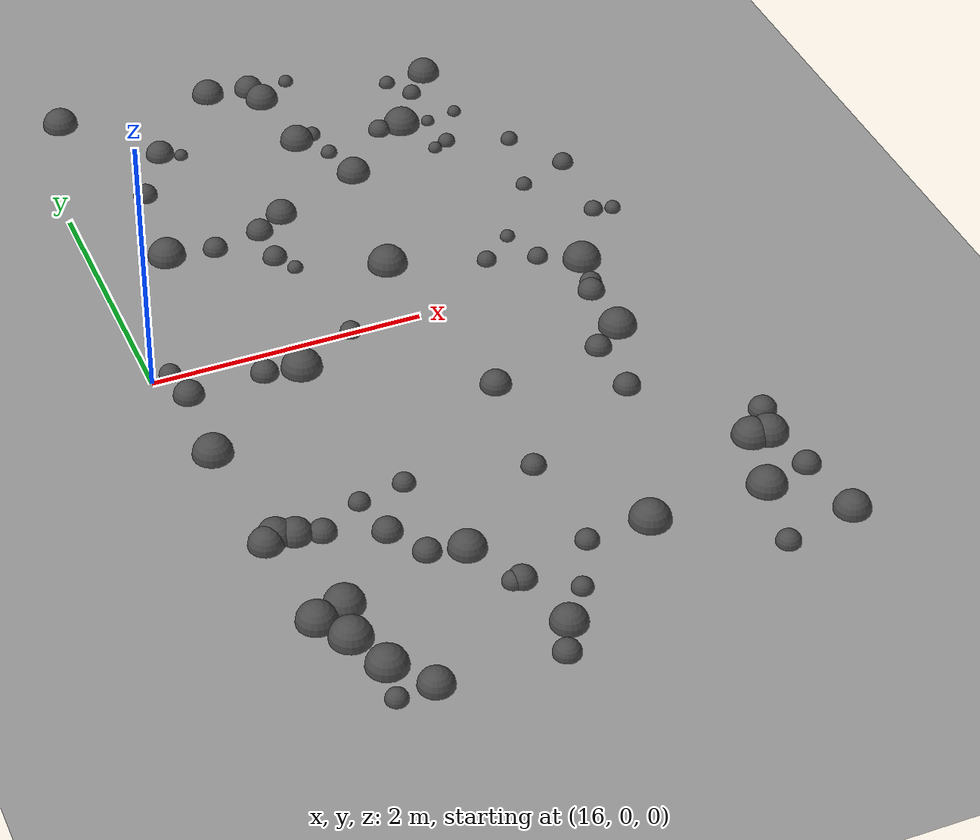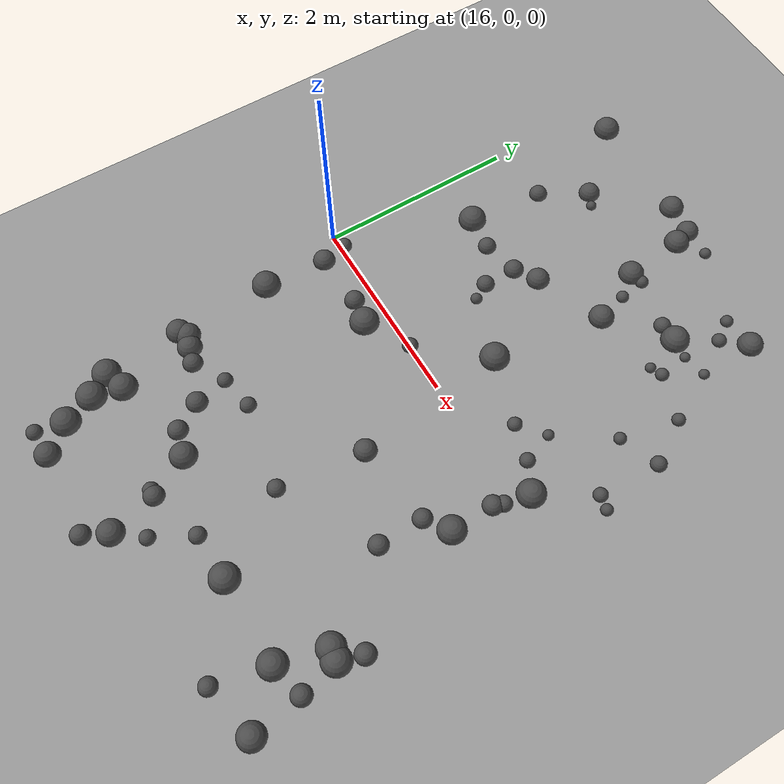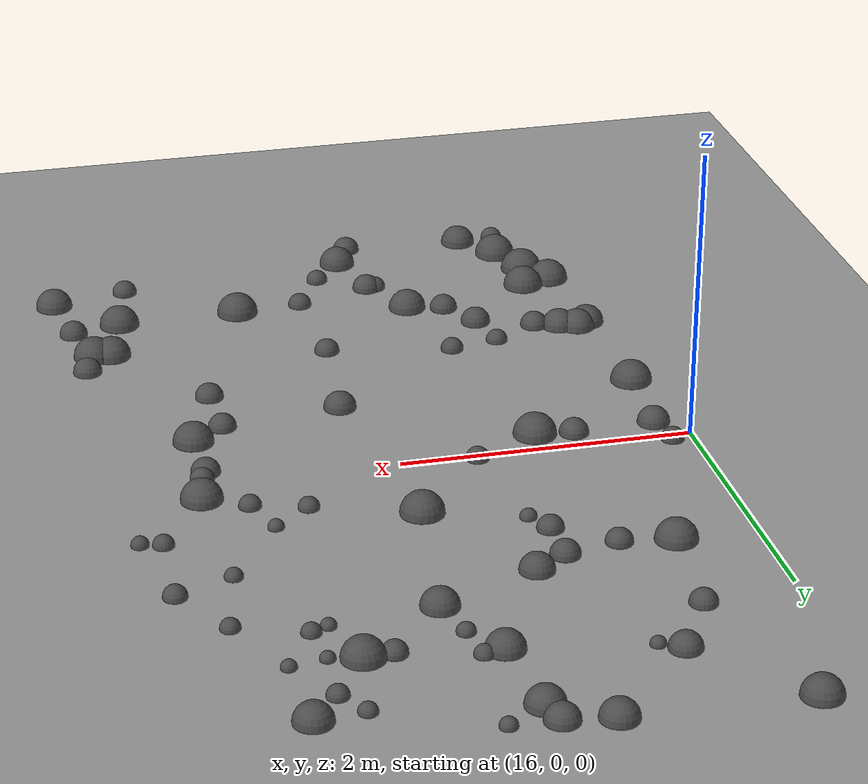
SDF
<sdf version="1.8">
 <world name="bumpy_world">
  <model name="ground_plane">
   <static>true</static>
   <link name="link">
    <collision name="collision">
     <geometry><plane><normal>0 0 1</normal><size>100 100</size></plane></geometry>
    </collision>
    <visual name="visual">
     <geometry><plane><normal>0 0 1</normal><size>100 100</size></plane></geometry>
     <material><ambient>0.6 0.6 0.6 1</ambient><diffuse>0.6 0.6 0.6 1</diffuse></material>
    </visual>
   </link>
  </model>
  <model name="bump_0">
   <static>true</static>
   <pose>16.894865641557914 -1.687665647435892 0.0 0 0 0</pose>
   <link name="link">
    <collision name="collision">
     <geometry><sphere><radius>0.0770126661770068</radius></sphere></geometry>
    </collision>
    <visual name="visual">
     <geometry><sphere><radius>0.0770126661770068</radius></sphere></geometry>
     <material><ambient>0.3 0.3 0.3 1</ambient><diffuse>0.3 0.3 0.3 1</diffuse></material>
    </visual>
   </link>
  </model>
  <model name="bump_1">
   <static>true</static>
   <pose>19.27033278510874 -0.6340820807959195 0.0 0 0 0</pose>
   <link name="link">
    <collision name="collision">
     <geometry><sphere><radius>0.13963033782455692</radius></sphere></geometry>
    </collision>
    <visual name="visual">
     <geometry><sphere><radius>0.13963033782455692</radius></sphere></geometry>
     <material><ambient>0.3 0.3 0.3 1</ambient><diffuse>0.3 0.3 0.3 1</diffuse></material>
    </visual>
   </link>
  </model>
  <model name="bump_11">
   <static>true</static>
   <pose>16.890118707463742 2.575693147293796 0.0 0 0 0</pose>
   <link name="link">
    <collision name="collision">
     <geometry><sphere><radius>0.10845833714806556</radius></sphere></geometry>
    </collision>
    <visual name="visual">
     <geometry><sphere><radius>0.10845833714806556</radius></sphere></geometry>
     <material><ambient>0.3 0.3 0.3 1</ambient><diffuse>0.3 0.3 0.3 1</diffuse></material>
    </visual>
   </link>
  </model>
  <model name="bump_13">
   <static>true</static>
   <pose>19.82699388906483 0.6549343927548907 0.0 0 0 0</pose>
   <link name="link">
    <collision name="collision">
     <geometry><sphere><radius>0.06008451406142055</radius></sphere></geometry>
    </collision>
    <visual name="visual">
     <geometry><sphere><radius>0.06008451406142055</radius></sphere></geometry>
     <material><ambient>0.3 0.3 0.3 1</ambient><diffuse>0.3 0.3 0.3 1</diffuse></material>
    </visual>
   </link>
  </model>
  <model name="bump_16">
   <static>true</static>
   <pose>18.119850170187316 3.139718380762189 0.0 0 0 0</pose>
   <link name="link">
    <collision name="collision">
     <geometry><sphere><radius>0.058183244620871155</radius></sphere></geometry>
    </collision>
    <visual name="visual">
     <geometry><sphere><radius>0.058183244620871155</radius></sphere></geometry>
     <material><ambient>0.3 0.3 0.3 1</ambient><diffuse>0.3 0.3 0.3 1</diffuse></material>
    </visual>
   </link>
  </model>
  <model name="bump_18">
   <static>true</static>
   <pose>19.264185863259478 -0.19718404351232843 0.0 0 0 0</pose>
   <link name="link">
    <collision name="collision">
     <geometry><sphere><radius>0.0996434231531243</radius></sphere></geometry>
    </collision>
    <visual name="visual">
     <geometry><sphere><radius>0.0996434231531243</radius></sphere></geometry>
     <material><ambient>0.3 0.3 0.3 1</ambient><diffuse>0.3 0.3 0.3 1</diffuse></material>
    </visual>
   </link>
  </model>
  <model name="bump_23">
   <static>true</static>
   <pose>18.211335934619928 -0.9073174179545531 0.0 0 0 0</pose>
   <link name="link">
    <collision name="collision">
     <geometry><sphere><radius>0.11321881905822662</radius></sphere></geometry>
    </collision>
    <visual name="visual">
     <geometry><sphere><radius>0.11321881905822662</radius></sphere></geometry>
     <material><ambient>0.3 0.3 0.3 1</ambient><diffuse>0.3 0.3 0.3 1</diffuse></material>
    </visual>
   </link>
  </model>
  <model name="bump_24">
   <static>true</static>
   <pose>16.541970305903412 1.3417336470706704 0.0 0 0 0</pose>
   <link name="link">
    <collision name="collision">
     <geometry><sphere><radius>0.1414803609292413</radius></sphere></geometry>
    </collision>
    <visual name="visual">
     <geometry><sphere><radius>0.1414803609292413</radius></sphere></geometry>
     <material><ambient>0.3 0.3 0.3 1</ambient><diffuse>0.3 0.3 0.3 1</diffuse></material>
    </visual>
   </link>
  </model>
  <model name="bump_28">
   <static>true</static>
   <pose>17.547857727442413 -2.7611181875364377 0.0 0 0 0</pose>
   <link name="link">
    <collision name="collision">
     <geometry><sphere><radius>0.0792202904193309</radius></sphere></geometry>
    </collision>
    <visual name="visual">
     <geometry><sphere><radius>0.0792202904193309</radius></sphere></geometry>
     <material><ambient>0.3 0.3 0.3 1</ambient><diffuse>0.3 0.3 0.3 1</diffuse></material>
    </visual>
   </link>
  </model>
  <model name="bump_34">
   <static>true</static>
   <pose>16.46842138627019 -3.4483761148656233 0.0 0 0 0</pose>
   <link name="link">
    <collision name="collision">
     <geometry><sphere><radius>0.07907619362396492</radius></sphere></geometry>
    </collision>
    <visual name="visual">
     <geometry><sphere><radius>0.07907619362396492</radius></sphere></geometry>
     <material><ambient>0.3 0.3 0.3 1</ambient><diffuse>0.3 0.3 0.3 1</diffuse></material>
    </visual>
   </link>
  </model>
  <model name="bump_39">
   <static>true</static>
   <pose>17.48793965364269 3.1971293868052486 0.0 0 0 0</pose>
   <link name="link">
    <collision name="collision">
     <geometry><sphere><radius>0.12398775786062906</radius></sphere></geometry>
    </collision>
    <visual name="visual">
     <geometry><sphere><radius>0.12398775786062906</radius></sphere></geometry>
     <material><ambient>0.3 0.3 0.3 1</ambient><diffuse>0.3 0.3 0.3 1</diffuse></material>
    </visual>
   </link>
  </model>
  <model name="bump_53">
   <static>true</static>
   <pose>19.044980606334114 -0.8017717594772975 0.0 0 0 0</pose>
   <link name="link">
    <collision name="collision">
     <geometry><sphere><radius>0.09641213359994337</radius></sphere></geometry>
    </collision>
    <visual name="visual">
     <geometry><sphere><radius>0.09641213359994337</radius></sphere></geometry>
     <material><ambient>0.3 0.3 0.3 1</ambient><diffuse>0.3 0.3 0.3 1</diffuse></material>
    </visual>
   </link>
  </model>
  <model name="bump_64">
   <static>true</static>
   <pose>17.272906880037652 1.3653921142893646 0.0 0 0 0</pose>
   <link name="link">
    <collision name="collision">
     <geometry><sphere><radius>0.10078895861672221</radius></sphere></geometry>
    </collision>
    <visual name="visual">
     <geometry><sphere><radius>0.10078895861672221</radius></sphere></geometry>
     <material><ambient>0.3 0.3 0.3 1</ambient><diffuse>0.3 0.3 0.3 1</diffuse></material>
    </visual>
   </link>
  </model>
  <model name="bump_65">
   <static>true</static>
   <pose>18.56745231552609 2.246675519682185 0.0 0 0 0</pose>
   <link name="link">
    <collision name="collision">
     <geometry><sphere><radius>0.08511446592290171</radius></sphere></geometry>
    </collision>
    <visual name="visual">
     <geometry><sphere><radius>0.08511446592290171</radius></sphere></geometry>
     <material><ambient>0.3 0.3 0.3 1</ambient><diffuse>0.3 0.3 0.3 1</diffuse></material>
    </visual>
   </link>
  </model>
  <model name="bump_79">
   <static>true</static>
   <pose>19.454917901876023 1.7552413308411579 0.0 0 0 0</pose>
   <link name="link">
    <collision name="collision">
     <geometry><sphere><radius>0.06640403343030907</radius></sphere></geometry>
    </collision>
    <visual name="visual">
     <geometry><sphere><radius>0.06640403343030907</radius></sphere></geometry>
     <material><ambient>0.3 0.3 0.3 1</ambient><diffuse>0.3 0.3 0.3 1</diffuse></material>
    </visual>
   </link>
  </model>
  <model name="bump_81">
   <static>true</static>
   <pose>19.91003569966445 -2.9588037231534967 0.0 0 0 0</pose>
   <link name="link">
    <collision name="collision">
     <geometry><sphere><radius>0.13193395944975517</radius></sphere></geometry>
    </collision>
    <visual name="visual">
     <geometry><sphere><radius>0.13193395944975517</radius></sphere></geometry>
     <material><ambient>0.3 0.3 0.3 1</ambient><diffuse>0.3 0.3 0.3 1</diffuse></material>
    </visual>
   </link>
  </model>
  <model name="bump_86">
   <static>true</static>
   <pose>19.351062935832438 0.16156882192562438 0.0 0 0 0</pose>
   <link name="link">
    <collision name="collision">
     <geometry><sphere><radius>0.14171831125933976</radius></sphere></geometry>
    </collision>
    <visual name="visual">
     <geometry><sphere><radius>0.14171831125933976</radius></sphere></geometry>
     <material><ambient>0.3 0.3 0.3 1</ambient><diffuse>0.3 0.3 0.3 1</diffuse></material>
    </visual>
   </link>
  </model>
  <model name="bump_87">
   <static>true</static>
   <pose>19.053474912040453 -1.2618177397716237 0.0 0 0 0</pose>
   <link name="link">
    <collision name="collision">
     <geometry><sphere><radius>0.09848311392736778</radius></sphere></geometry>
    </collision>
    <visual name="visual">
     <geometry><sphere><radius>0.09848311392736778</radius></sphere></geometry>
     <material><ambient>0.3 0.3 0.3 1</ambient><diffuse>0.3 0.3 0.3 1</diffuse></material>
    </visual>
   </link>
  </model>
  <model name="bump_89">
   <static>true</static>
   <pose>17.03513688449517 2.4987586148283114 0.0 0 0 0</pose>
   <link name="link">
    <collision name="collision">
     <geometry><sphere><radius>0.05225523030715243</radius></sphere></geometry>
    </collision>
    <visual name="visual">
     <geometry><sphere><radius>0.05225523030715243</radius></sphere></geometry>
     <material><ambient>0.3 0.3 0.3 1</ambient><diffuse>0.3 0.3 0.3 1</diffuse></material>
    </visual>
   </link>
  </model>
  <model name="bump_96">
   <static>true</static>
   <pose>18.11672064690927 -1.7843513054658986 0.0 0 0 0</pose>
   <link name="link">
    <collision name="collision">
     <geometry><sphere><radius>0.08833786254354743</radius></sphere></geometry>
    </collision>
    <visual name="visual">
     <geometry><sphere><radius>0.08833786254354743</radius></sphere></geometry>
     <material><ambient>0.3 0.3 0.3 1</ambient><diffuse>0.3 0.3 0.3 1</diffuse></material>
    </visual>
   </link>
  </model>
  <model name="bump_107">
   <static>true</static>
   <pose>19.064797850925974 0.31498275369659856 0.0 0 0 0</pose>
   <link name="link">
    <collision name="collision">
     <geometry><sphere><radius>0.0760409565244126</radius></sphere></geometry>
    </collision>
    <visual name="visual">
     <geometry><sphere><radius>0.0760409565244126</radius></sphere></geometry>
     <material><ambient>0.3 0.3 0.3 1</ambient><diffuse>0.3 0.3 0.3 1</diffuse></material>
    </visual>
   </link>
  </model>
  <model name="bump_110">
   <static>true</static>
   <pose>19.714448294070483 1.3224208898128964 0.0 0 0 0</pose>
   <link name="link">
    <collision name="collision">
     <geometry><sphere><radius>0.08004943521593696</radius></sphere></geometry>
    </collision>
    <visual name="visual">
     <geometry><sphere><radius>0.08004943521593696</radius></sphere></geometry>
     <material><ambient>0.3 0.3 0.3 1</ambient><diffuse>0.3 0.3 0.3 1</diffuse></material>
    </visual>
   </link>
  </model>
  <model name="bump_116">
   <static>true</static>
   <pose>19.8330262734646 -2.4575556754699357 0.0 0 0 0</pose>
   <link name="link">
    <collision name="collision">
     <geometry><sphere><radius>0.09982421549167879</radius></sphere></geometry>
    </collision>
    <visual name="visual">
     <geometry><sphere><radius>0.09982421549167879</radius></sphere></geometry>
     <material><ambient>0.3 0.3 0.3 1</ambient><diffuse>0.3 0.3 0.3 1</diffuse></material>
    </visual>
   </link>
  </model>
  <model name="bump_126">
   <static>true</static>
   <pose>19.224636417881808 -0.6253081040314781 0.0 0 0 0</pose>
   <link name="link">
    <collision name="collision">
     <geometry><sphere><radius>0.08525112008594844</radius></sphere></geometry>
    </collision>
    <visual name="visual">
     <geometry><sphere><radius>0.08525112008594844</radius></sphere></geometry>
     <material><ambient>0.3 0.3 0.3 1</ambient><diffuse>0.3 0.3 0.3 1</diffuse></material>
    </visual>
   </link>
  </model>
  <model name="bump_130">
   <static>true</static>
   <pose>17.3927647419013 -2.362360630826186 0.0 0 0 0</pose>
   <link name="link">
    <collision name="collision">
     <geometry><sphere><radius>0.13389604923829368</radius></sphere></geometry>
    </collision>
    <visual name="visual">
     <geometry><sphere><radius>0.13389604923829368</radius></sphere></geometry>
     <material><ambient>0.3 0.3 0.3 1</ambient><diffuse>0.3 0.3 0.3 1</diffuse></material>
    </visual>
   </link>
  </model>
  <model name="bump_133">
   <static>true</static>
   <pose>16.75999113023785 -0.18843897914446472 0.0 0 0 0</pose>
   <link name="link">
    <collision name="collision">
     <geometry><sphere><radius>0.10180832368294256</radius></sphere></geometry>
    </collision>
    <visual name="visual">
     <geometry><sphere><radius>0.10180832368294256</radius></sphere></geometry>
     <material><ambient>0.3 0.3 0.3 1</ambient><diffuse>0.3 0.3 0.3 1</diffuse></material>
    </visual>
   </link>
  </model>
  <model name="bump_135">
   <static>true</static>
   <pose>16.183895826559173 -1.8347179326048426 0.0 0 0 0</pose>
   <link name="link">
    <collision name="collision">
     <geometry><sphere><radius>0.12458849332525546</radius></sphere></geometry>
    </collision>
    <visual name="visual">
     <geometry><sphere><radius>0.12458849332525546</radius></sphere></geometry>
     <material><ambient>0.3 0.3 0.3 1</ambient><diffuse>0.3 0.3 0.3 1</diffuse></material>
    </visual>
   </link>
  </model>
  <model name="bump_137">
   <static>true</static>
   <pose>18.95599147970977 0.6237492516429253 0.0 0 0 0</pose>
   <link name="link">
    <collision name="collision">
     <geometry><sphere><radius>0.05531543965234623</radius></sphere></geometry>
    </collision>
    <visual name="visual">
     <geometry><sphere><radius>0.05531543965234623</radius></sphere></geometry>
     <material><ambient>0.3 0.3 0.3 1</ambient><diffuse>0.3 0.3 0.3 1</diffuse></material>
    </visual>
   </link>
  </model>
  <model name="bump_140">
   <static>true</static>
   <pose>19.74069771976294 -2.0730803569499674 0.0 0 0 0</pose>
   <link name="link">
    <collision name="collision">
     <geometry><sphere><radius>0.14217396815626526</radius></sphere></geometry>
    </collision>
    <visual name="visual">
     <geometry><sphere><radius>0.14217396815626526</radius></sphere></geometry>
     <material><ambient>0.3 0.3 0.3 1</ambient><diffuse>0.3 0.3 0.3 1</diffuse></material>
    </visual>
   </link>
  </model>
  <model name="bump_145">
   <static>true</static>
   <pose>18.986524632307994 2.6165805572423633 0.0 0 0 0</pose>
   <link name="link">
    <collision name="collision">
     <geometry><sphere><radius>0.07236438739594267</radius></sphere></geometry>
    </collision>
    <visual name="visual">
     <geometry><sphere><radius>0.07236438739594267</radius></sphere></geometry>
     <material><ambient>0.3 0.3 0.3 1</ambient><diffuse>0.3 0.3 0.3 1</diffuse></material>
    </visual>
   </link>
  </model>
  <model name="bump_146">
   <static>true</static>
   <pose>16.15101532534466 -0.8545421534187048 0.0 0 0 0</pose>
   <link name="link">
    <collision name="collision">
     <geometry><sphere><radius>0.14462376899638774</radius></sphere></geometry>
    </collision>
    <visual name="visual">
     <geometry><sphere><radius>0.14462376899638774</radius></sphere></geometry>
     <material><ambient>0.3 0.3 0.3 1</ambient><diffuse>0.3 0.3 0.3 1</diffuse></material>
    </visual>
   </link>
  </model>
  <model name="bump_156">
   <static>true</static>
   <pose>16.292876204657475 3.2389984758820916 0.0 0 0 0</pose>
   <link name="link">
    <collision name="collision">
     <geometry><sphere><radius>0.1339964646827373</radius></sphere></geometry>
    </collision>
    <visual name="visual">
     <geometry><sphere><radius>0.1339964646827373</radius></sphere></geometry>
     <material><ambient>0.3 0.3 0.3 1</ambient><diffuse>0.3 0.3 0.3 1</diffuse></material>
    </visual>
   </link>
  </model>
  <model name="bump_158">
   <static>true</static>
   <pose>19.201437208242496 2.259824731009566 0.0 0 0 0</pose>
   <link name="link">
    <collision name="collision">
     <geometry><sphere><radius>0.05230736536537889</radius></sphere></geometry>
    </collision>
    <visual name="visual">
     <geometry><sphere><radius>0.05230736536537889</radius></sphere></geometry>
     <material><ambient>0.3 0.3 0.3 1</ambient><diffuse>0.3 0.3 0.3 1</diffuse></material>
    </visual>
   </link>
  </model>
  <model name="bump_166">
   <static>true</static>
   <pose>17.241130891754526 -1.6197570712991214 0.0 0 0 0</pose>
   <link name="link">
    <collision name="collision">
     <geometry><sphere><radius>0.08089685877538917</radius></sphere></geometry>
    </collision>
    <visual name="visual">
     <geometry><sphere><radius>0.08089685877538917</radius></sphere></geometry>
     <material><ambient>0.3 0.3 0.3 1</ambient><diffuse>0.3 0.3 0.3 1</diffuse></material>
    </visual>
   </link>
  </model>
  <model name="bump_174">
   <static>true</static>
   <pose>16.245956037029977 -2.6236842935118703 0.0 0 0 0</pose>
   <link name="link">
    <collision name="collision">
     <geometry><sphere><radius>0.14260202111461284</radius></sphere></geometry>
    </collision>
    <visual name="visual">
     <geometry><sphere><radius>0.14260202111461284</radius></sphere></geometry>
     <material><ambient>0.3 0.3 0.3 1</ambient><diffuse>0.3 0.3 0.3 1</diffuse></material>
    </visual>
   </link>
  </model>
  <model name="bump_185">
   <static>true</static>
   <pose>16.140553813293717 0.043361347760044744 0.0 0 0 0</pose>
   <link name="link">
    <collision name="collision">
     <geometry><sphere><radius>0.0809417641182185</radius></sphere></geometry>
    </collision>
    <visual name="visual">
     <geometry><sphere><radius>0.0809417641182185</radius></sphere></geometry>
     <material><ambient>0.3 0.3 0.3 1</ambient><diffuse>0.3 0.3 0.3 1</diffuse></material>
    </visual>
   </link>
  </model>
  <model name="bump_188">
   <static>true</static>
   <pose>16.899644033026842 1.2895545569854052 0.0 0 0 0</pose>
   <link name="link">
    <collision name="collision">
     <geometry><sphere><radius>0.09200134973492932</radius></sphere></geometry>
    </collision>
    <visual name="visual">
     <geometry><sphere><radius>0.09200134973492932</radius></sphere></geometry>
     <material><ambient>0.3 0.3 0.3 1</ambient><diffuse>0.3 0.3 0.3 1</diffuse></material>
    </visual>
   </link>
  </model>
  <model name="bump_205">
   <static>true</static>
   <pose>18.75642364077821 2.2545471563358213 0.0 0 0 0</pose>
   <link name="link">
    <collision name="collision">
     <geometry><sphere><radius>0.14117183363381214</radius></sphere></geometry>
    </collision>
    <visual name="visual">
     <geometry><sphere><radius>0.14117183363381214</radius></sphere></geometry>
     <material><ambient>0.3 0.3 0.3 1</ambient><diffuse>0.3 0.3 0.3 1</diffuse></material>
    </visual>
   </link>
  </model>
  <model name="bump_207">
   <static>true</static>
   <pose>16.39479586024447 -1.8178576275814478 0.0 0 0 0</pose>
   <link name="link">
    <collision name="collision">
     <geometry><sphere><radius>0.12243965777340467</radius></sphere></geometry>
    </collision>
    <visual name="visual">
     <geometry><sphere><radius>0.12243965777340467</radius></sphere></geometry>
     <material><ambient>0.3 0.3 0.3 1</ambient><diffuse>0.3 0.3 0.3 1</diffuse></material>
    </visual>
   </link>
  </model>
  <model name="bump_208">
   <static>true</static>
   <pose>19.48852771721697 -2.5455438189163866 0.0 0 0 0</pose>
   <link name="link">
    <collision name="collision">
     <geometry><sphere><radius>0.1422848870477081</radius></sphere></geometry>
    </collision>
    <visual name="visual">
     <geometry><sphere><radius>0.1422848870477081</radius></sphere></geometry>
     <material><ambient>0.3 0.3 0.3 1</ambient><diffuse>0.3 0.3 0.3 1</diffuse></material>
    </visual>
   </link>
  </model>
  <model name="bump_223">
   <static>true</static>
   <pose>16.622969861822625 2.110888768589918 0.0 0 0 0</pose>
   <link name="link">
    <collision name="collision">
     <geometry><sphere><radius>0.0927565266760193</radius></sphere></geometry>
    </collision>
    <visual name="visual">
     <geometry><sphere><radius>0.0927565266760193</radius></sphere></geometry>
     <material><ambient>0.3 0.3 0.3 1</ambient><diffuse>0.3 0.3 0.3 1</diffuse></material>
    </visual>
   </link>
  </model>
  <model name="bump_225">
   <static>true</static>
   <pose>16.26852886894384 -1.777485092037138 0.0 0 0 0</pose>
   <link name="link">
    <collision name="collision">
     <geometry><sphere><radius>0.12743820219397342</radius></sphere></geometry>
    </collision>
    <visual name="visual">
     <geometry><sphere><radius>0.12743820219397342</radius></sphere></geometry>
     <material><ambient>0.3 0.3 0.3 1</ambient><diffuse>0.3 0.3 0.3 1</diffuse></material>
    </visual>
   </link>
  </model>
  <model name="bump_239">
   <static>true</static>
   <pose>17.494725410259882 1.5089974117780454 0.0 0 0 0</pose>
   <link name="link">
    <collision name="collision">
     <geometry><sphere><radius>0.11640159663591805</radius></sphere></geometry>
    </collision>
    <visual name="visual">
     <geometry><sphere><radius>0.11640159663591805</radius></sphere></geometry>
     <material><ambient>0.3 0.3 0.3 1</ambient><diffuse>0.3 0.3 0.3 1</diffuse></material>
    </visual>
   </link>
  </model>
  <model name="bump_244">
   <static>true</static>
   <pose>17.36869214081835 0.8572316788995522 0.0 0 0 0</pose>
   <link name="link">
    <collision name="collision">
     <geometry><sphere><radius>0.058085471998277266</radius></sphere></geometry>
    </collision>
    <visual name="visual">
     <geometry><sphere><radius>0.058085471998277266</radius></sphere></geometry>
     <material><ambient>0.3 0.3 0.3 1</ambient><diffuse>0.3 0.3 0.3 1</diffuse></material>
    </visual>
   </link>
  </model>
  <model name="bump_251">
   <static>true</static>
   <pose>18.011279772042837 0.6488313339751626 0.0 0 0 0</pose>
   <link name="link">
    <collision name="collision">
     <geometry><sphere><radius>0.1482097005302343</radius></sphere></geometry>
    </collision>
    <visual name="visual">
     <geometry><sphere><radius>0.1482097005302343</radius></sphere></geometry>
     <material><ambient>0.3 0.3 0.3 1</ambient><diffuse>0.3 0.3 0.3 1</diffuse></material>
    </visual>
   </link>
  </model>
  <model name="bump_253">
   <static>true</static>
   <pose>19.303365351182094 -0.10174577401361695 0.0 0 0 0</pose>
   <link name="link">
    <collision name="collision">
     <geometry><sphere><radius>0.08122131105415184</radius></sphere></geometry>
    </collision>
    <visual name="visual">
     <geometry><sphere><radius>0.08122131105415184</radius></sphere></geometry>
     <material><ambient>0.3 0.3 0.3 1</ambient><diffuse>0.3 0.3 0.3 1</diffuse></material>
    </visual>
   </link>
  </model>
  <model name="bump_257">
   <static>true</static>
   <pose>17.02132880456429 -0.2277326493270344 0.0 0 0 0</pose>
   <link name="link">
    <collision name="collision">
     <geometry><sphere><radius>0.1490038831999964</radius></sphere></geometry>
    </collision>
    <visual name="visual">
     <geometry><sphere><radius>0.1490038831999964</radius></sphere></geometry>
     <material><ambient>0.3 0.3 0.3 1</ambient><diffuse>0.3 0.3 0.3 1</diffuse></material>
    </visual>
   </link>
  </model>
  <model name="bump_267">
   <static>true</static>
   <pose>17.859198407479052 2.9751596439777472 0.0 0 0 0</pose>
   <link name="link">
    <collision name="collision">
     <geometry><sphere><radius>0.12713708359273812</radius></sphere></geometry>
    </collision>
    <visual name="visual">
     <geometry><sphere><radius>0.12713708359273812</radius></sphere></geometry>
     <material><ambient>0.3 0.3 0.3 1</ambient><diffuse>0.3 0.3 0.3 1</diffuse></material>
    </visual>
   </link>
  </model>
  <model name="bump_268">
   <static>true</static>
   <pose>18.962183051554202 2.2180143595416126 0.0 0 0 0</pose>
   <link name="link">
    <collision name="collision">
     <geometry><sphere><radius>0.05085861014831288</radius></sphere></geometry>
    </collision>
    <visual name="visual">
     <geometry><sphere><radius>0.05085861014831288</radius></sphere></geometry>
     <material><ambient>0.3 0.3 0.3 1</ambient><diffuse>0.3 0.3 0.3 1</diffuse></material>
    </visual>
   </link>
  </model>
  <model name="bump_275">
   <static>true</static>
   <pose>17.610166769556056 -3.4735261500870376 0.0 0 0 0</pose>
   <link name="link">
    <collision name="collision">
     <geometry><sphere><radius>0.09794068278320428</radius></sphere></geometry>
    </collision>
    <visual name="visual">
     <geometry><sphere><radius>0.09794068278320428</radius></sphere></geometry>
     <material><ambient>0.3 0.3 0.3 1</ambient><diffuse>0.3 0.3 0.3 1</diffuse></material>
    </visual>
   </link>
  </model>
  <model name="bump_277">
   <static>true</static>
   <pose>19.683743696753268 0.6899951998906451 0.0 0 0 0</pose>
   <link name="link">
    <collision name="collision">
     <geometry><sphere><radius>0.07146396285736151</radius></sphere></geometry>
    </collision>
    <visual name="visual">
     <geometry><sphere><radius>0.07146396285736151</radius></sphere></geometry>
     <material><ambient>0.3 0.3 0.3 1</ambient><diffuse>0.3 0.3 0.3 1</diffuse></material>
    </visual>
   </link>
  </model>
  <model name="bump_285">
   <static>true</static>
   <pose>19.371183738004515 -3.0864439702804893 0.0 0 0 0</pose>
   <link name="link">
    <collision name="collision">
     <geometry><sphere><radius>0.08864038428658386</radius></sphere></geometry>
    </collision>
    <visual name="visual">
     <geometry><sphere><radius>0.08864038428658386</radius></sphere></geometry>
     <material><ambient>0.3 0.3 0.3 1</ambient><diffuse>0.3 0.3 0.3 1</diffuse></material>
    </visual>
   </link>
  </model>
  <model name="bump_295">
   <static>true</static>
   <pose>18.856116409249033 2.817913064046846 0.0 0 0 0</pose>
   <link name="link">
    <collision name="collision">
     <geometry><sphere><radius>0.0624455706086684</radius></sphere></geometry>
    </collision>
    <visual name="visual">
     <geometry><sphere><radius>0.0624455706086684</radius></sphere></geometry>
     <material><ambient>0.3 0.3 0.3 1</ambient><diffuse>0.3 0.3 0.3 1</diffuse></material>
    </visual>
   </link>
  </model>
  <model name="bump_298">
   <static>true</static>
   <pose>17.939878627566586 -2.9769752738055897 0.0 0 0 0</pose>
   <link name="link">
    <collision name="collision">
     <geometry><sphere><radius>0.0768793640303627</radius></sphere></geometry>
    </collision>
    <visual name="visual">
     <geometry><sphere><radius>0.0768793640303627</radius></sphere></geometry>
     <material><ambient>0.3 0.3 0.3 1</ambient><diffuse>0.3 0.3 0.3 1</diffuse></material>
    </visual>
   </link>
  </model>
  <model name="bump_299">
   <static>true</static>
   <pose>18.70232061887061 0.41852506307044557 0.0 0 0 0</pose>
   <link name="link">
    <collision name="collision">
     <geometry><sphere><radius>0.07225304493908329</radius></sphere></geometry>
    </collision>
    <visual name="visual">
     <geometry><sphere><radius>0.07225304493908329</radius></sphere></geometry>
     <material><ambient>0.3 0.3 0.3 1</ambient><diffuse>0.3 0.3 0.3 1</diffuse></material>
    </visual>
   </link>
  </model>
  <model name="bump_300">
   <static>true</static>
   <pose>18.18049132092929 1.7931082271267815 0.0 0 0 0</pose>
   <link name="link">
    <collision name="collision">
     <geometry><sphere><radius>0.1266136791186206</radius></sphere></geometry>
    </collision>
    <visual name="visual">
     <geometry><sphere><radius>0.1266136791186206</radius></sphere></geometry>
     <material><ambient>0.3 0.3 0.3 1</ambient><diffuse>0.3 0.3 0.3 1</diffuse></material>
    </visual>
   </link>
  </model>
  <model name="bump_302">
   <static>true</static>
   <pose>17.135560295478705 -2.2960025054341933 0.0 0 0 0</pose>
   <link name="link">
    <collision name="collision">
     <geometry><sphere><radius>0.09961154165933364</radius></sphere></geometry>
    </collision>
    <visual name="visual">
     <geometry><sphere><radius>0.09961154165933364</radius></sphere></geometry>
     <material><ambient>0.3 0.3 0.3 1</ambient><diffuse>0.3 0.3 0.3 1</diffuse></material>
    </visual>
   </link>
  </model>
  <model name="bump_308">
   <static>true</static>
   <pose>16.51886263504312 -3.156402319645589 0.0 0 0 0</pose>
   <link name="link">
    <collision name="collision">
     <geometry><sphere><radius>0.14589884018426696</radius></sphere></geometry>
    </collision>
    <visual name="visual">
     <geometry><sphere><radius>0.14589884018426696</radius></sphere></geometry>
     <material><ambient>0.3 0.3 0.3 1</ambient><diffuse>0.3 0.3 0.3 1</diffuse></material>
    </visual>
   </link>
  </model>
  <model name="bump_313">
   <static>true</static>
   <pose>17.610170617274267 -2.760970301662216 0.0 0 0 0</pose>
   <link name="link">
    <collision name="collision">
     <geometry><sphere><radius>0.10161047006875654</radius></sphere></geometry>
    </collision>
    <visual name="visual">
     <geometry><sphere><radius>0.10161047006875654</radius></sphere></geometry>
     <material><ambient>0.3 0.3 0.3 1</ambient><diffuse>0.3 0.3 0.3 1</diffuse></material>
    </visual>
   </link>
  </model>
  <model name="bump_317">
   <static>true</static>
   <pose>16.965972786625724 -2.018560671010902 0.0 0 0 0</pose>
   <link name="link">
    <collision name="collision">
     <geometry><sphere><radius>0.10615375125239211</radius></sphere></geometry>
    </collision>
    <visual name="visual">
     <geometry><sphere><radius>0.10615375125239211</radius></sphere></geometry>
     <material><ambient>0.3 0.3 0.3 1</ambient><diffuse>0.3 0.3 0.3 1</diffuse></material>
    </visual>
   </link>
  </model>
  <model name="bump_321">
   <static>true</static>
   <pose>18.10125321880522 2.111404154468394 0.0 0 0 0</pose>
   <link name="link">
    <collision name="collision">
     <geometry><sphere><radius>0.06299882853805341</radius></sphere></geometry>
    </collision>
    <visual name="visual">
     <geometry><sphere><radius>0.06299882853805341</radius></sphere></geometry>
     <material><ambient>0.3 0.3 0.3 1</ambient><diffuse>0.3 0.3 0.3 1</diffuse></material>
    </visual>
   </link>
  </model>
  <model name="bump_325">
   <static>true</static>
   <pose>16.46176347546114 -2.548712502586536 0.0 0 0 0</pose>
   <link name="link">
    <collision name="collision">
     <geometry><sphere><radius>0.1425108713828887</radius></sphere></geometry>
    </collision>
    <visual name="visual">
     <geometry><sphere><radius>0.1425108713828887</radius></sphere></geometry>
     <material><ambient>0.3 0.3 0.3 1</ambient><diffuse>0.3 0.3 0.3 1</diffuse></material>
    </visual>
   </link>
  </model>
  <model name="bump_326">
   <static>true</static>
   <pose>18.620017273678005 -2.556760025284265 0.0 0 0 0</pose>
   <link name="link">
    <collision name="collision">
     <geometry><sphere><radius>0.14707646814999142</radius></sphere></geometry>
    </collision>
    <visual name="visual">
     <geometry><sphere><radius>0.14707646814999142</radius></sphere></geometry>
     <material><ambient>0.3 0.3 0.3 1</ambient><diffuse>0.3 0.3 0.3 1</diffuse></material>
    </visual>
   </link>
  </model>
  <model name="bump_337">
   <static>true</static>
   <pose>17.482591530499256 0.01829408479861705 0.0 0 0 0</pose>
   <link name="link">
    <collision name="collision">
     <geometry><sphere><radius>0.07975180521434486</radius></sphere></geometry>
    </collision>
    <visual name="visual">
     <geometry><sphere><radius>0.07975180521434486</radius></sphere></geometry>
     <material><ambient>0.3 0.3 0.3 1</ambient><diffuse>0.3 0.3 0.3 1</diffuse></material>
    </visual>
   </link>
  </model>
  <model name="bump_340">
   <static>true</static>
   <pose>16.395507213725978 -2.8433496825913505 0.0 0 0 0</pose>
   <link name="link">
    <collision name="collision">
     <geometry><sphere><radius>0.14982950802706957</radius></sphere></geometry>
    </collision>
    <visual name="visual">
     <geometry><sphere><radius>0.14982950802706957</radius></sphere></geometry>
     <material><ambient>0.3 0.3 0.3 1</ambient><diffuse>0.3 0.3 0.3 1</diffuse></material>
    </visual>
   </link>
  </model>
  <model name="bump_344">
   <static>true</static>
   <pose>17.92364705402059 2.349903048260015 0.0 0 0 0</pose>
   <link name="link">
    <collision name="collision">
     <geometry><sphere><radius>0.12746645428173872</radius></sphere></geometry>
    </collision>
    <visual name="visual">
     <geometry><sphere><radius>0.12746645428173872</radius></sphere></geometry>
     <material><ambient>0.3 0.3 0.3 1</ambient><diffuse>0.3 0.3 0.3 1</diffuse></material>
    </visual>
   </link>
  </model>
  <model name="bump_350">
   <static>true</static>
   <pose>18.05937496058439 2.3794854118474866 0.0 0 0 0</pose>
   <link name="link">
    <collision name="collision">
     <geometry><sphere><radius>0.0668743289422875</radius></sphere></geometry>
    </collision>
    <visual name="visual">
     <geometry><sphere><radius>0.0668743289422875</radius></sphere></geometry>
     <material><ambient>0.3 0.3 0.3 1</ambient><diffuse>0.3 0.3 0.3 1</diffuse></material>
    </visual>
   </link>
  </model>
  <model name="bump_352">
   <static>true</static>
   <pose>18.88140168824776 1.863729952017458 0.0 0 0 0</pose>
   <link name="link">
    <collision name="collision">
     <geometry><sphere><radius>0.05243307164385324</radius></sphere></geometry>
    </collision>
    <visual name="visual">
     <geometry><sphere><radius>0.05243307164385324</radius></sphere></geometry>
     <material><ambient>0.3 0.3 0.3 1</ambient><diffuse>0.3 0.3 0.3 1</diffuse></material>
    </visual>
   </link>
  </model>
  <model name="bump_353">
   <static>true</static>
   <pose>16.19292435124671 -0.2159861573992834 0.0 0 0 0</pose>
   <link name="link">
    <collision name="collision">
     <geometry><sphere><radius>0.11250178767653517</radius></sphere></geometry>
    </collision>
    <visual name="visual">
     <geometry><sphere><radius>0.11250178767653517</radius></sphere></geometry>
     <material><ambient>0.3 0.3 0.3 1</ambient><diffuse>0.3 0.3 0.3 1</diffuse></material>
    </visual>
   </link>
  </model>
  <model name="bump_356">
   <static>true</static>
   <pose>17.272316305378407 1.0286099116526897 0.0 0 0 0</pose>
   <link name="link">
    <collision name="collision">
     <geometry><sphere><radius>0.09040780031993101</radius></sphere></geometry>
    </collision>
    <visual name="visual">
     <geometry><sphere><radius>0.09040780031993101</radius></sphere></geometry>
     <material><ambient>0.3 0.3 0.3 1</ambient><diffuse>0.3 0.3 0.3 1</diffuse></material>
    </visual>
   </link>
  </model>
  <model name="bump_374">
   <static>true</static>
   <pose>19.61680885977146 -2.0563025006692355 0.0 0 0 0</pose>
   <link name="link">
    <collision name="collision">
     <geometry><sphere><radius>0.13856567400147457</radius></sphere></geometry>
    </collision>
    <visual name="visual">
     <geometry><sphere><radius>0.13856567400147457</radius></sphere></geometry>
     <material><ambient>0.3 0.3 0.3 1</ambient><diffuse>0.3 0.3 0.3 1</diffuse></material>
    </visual>
   </link>
  </model>
  <model name="bump_377">
   <static>true</static>
   <pose>17.809705217932223 3.1512513333892445 0.0 0 0 0</pose>
   <link name="link">
    <collision name="collision">
     <geometry><sphere><radius>0.1117661641810336</radius></sphere></geometry>
    </collision>
    <visual name="visual">
     <geometry><sphere><radius>0.1117661641810336</radius></sphere></geometry>
     <material><ambient>0.3 0.3 0.3 1</ambient><diffuse>0.3 0.3 0.3 1</diffuse></material>
    </visual>
   </link>
  </model>
  <model name="bump_380">
   <static>true</static>
   <pose>16.567477998108323 -1.8696069750658428 0.0 0 0 0</pose>
   <link name="link">
    <collision name="collision">
     <geometry><sphere><radius>0.0988377041426163</radius></sphere></geometry>
    </collision>
    <visual name="visual">
     <geometry><sphere><radius>0.0988377041426163</radius></sphere></geometry>
     <material><ambient>0.3 0.3 0.3 1</ambient><diffuse>0.3 0.3 0.3 1</diffuse></material>
    </visual>
   </link>
  </model>
  <model name="bump_383">
   <static>true</static>
   <pose>19.177187723371027 2.844880541562005 0.0 0 0 0</pose>
   <link name="link">
    <collision name="collision">
     <geometry><sphere><radius>0.12572569786104093</radius></sphere></geometry>
    </collision>
    <visual name="visual">
     <geometry><sphere><radius>0.12572569786104093</radius></sphere></geometry>
     <material><ambient>0.3 0.3 0.3 1</ambient><diffuse>0.3 0.3 0.3 1</diffuse></material>
    </visual>
   </link>
  </model>
  <model name="bump_384">
   <static>true</static>
   <pose>19.32674792264747 1.1720277156062942 0.0 0 0 0</pose>
   <link name="link">
    <collision name="collision">
     <geometry><sphere><radius>0.061882293988856696</radius></sphere></geometry>
    </collision>
    <visual name="visual">
     <geometry><sphere><radius>0.061882293988856696</radius></sphere></geometry>
     <material><ambient>0.3 0.3 0.3 1</ambient><diffuse>0.3 0.3 0.3 1</diffuse></material>
    </visual>
   </link>
  </model>
  <model name="bump_385">
   <static>true</static>
   <pose>19.815749184668093 -1.8363092700472188 0.0 0 0 0</pose>
   <link name="link">
    <collision name="collision">
     <geometry><sphere><radius>0.10162312439756366</radius></sphere></geometry>
    </collision>
    <visual name="visual">
     <geometry><sphere><radius>0.10162312439756366</radius></sphere></geometry>
     <material><ambient>0.3 0.3 0.3 1</ambient><diffuse>0.3 0.3 0.3 1</diffuse></material>
    </visual>
   </link>
  </model>
  <model name="bump_388">
   <static>true</static>
   <pose>18.996695080089353 1.9140638995676618 0.0 0 0 0</pose>
   <link name="link">
    <collision name="collision">
     <geometry><sphere><radius>0.06609349365436598</radius></sphere></geometry>
    </collision>
    <visual name="visual">
     <geometry><sphere><radius>0.06609349365436598</radius></sphere></geometry>
     <material><ambient>0.3 0.3 0.3 1</ambient><diffuse>0.3 0.3 0.3 1</diffuse></material>
    </visual>
   </link>
  </model>
  <model name="bump_390">
   <static>true</static>
   <pose>16.740320512404317 -3.4269664160046345 0.0 0 0 0</pose>
   <link name="link">
    <collision name="collision">
     <geometry><sphere><radius>0.12565189764095097</radius></sphere></geometry>
    </collision>
    <visual name="visual">
     <geometry><sphere><radius>0.12565189764095097</radius></sphere></geometry>
     <material><ambient>0.3 0.3 0.3 1</ambient><diffuse>0.3 0.3 0.3 1</diffuse></material>
    </visual>
   </link>
  </model>
  <model name="bump_392">
   <static>true</static>
   <pose>18.149214486527306 -2.5874193650747728 0.0 0 0 0</pose>
   <link name="link">
    <collision name="collision">
     <geometry><sphere><radius>0.08422099603890944</radius></sphere></geometry>
    </collision>
    <visual name="visual">
     <geometry><sphere><radius>0.08422099603890944</radius></sphere></geometry>
     <material><ambient>0.3 0.3 0.3 1</ambient><diffuse>0.3 0.3 0.3 1</diffuse></material>
    </visual>
   </link>
  </model>
  <model name="bump_396">
   <static>true</static>
   <pose>17.73076765753437 -3.235338121885476 0.0 0 0 0</pose>
   <link name="link">
    <collision name="collision">
     <geometry><sphere><radius>0.1302278948223687</radius></sphere></geometry>
    </collision>
    <visual name="visual">
     <geometry><sphere><radius>0.1302278948223687</radius></sphere></geometry>
     <material><ambient>0.3 0.3 0.3 1</ambient><diffuse>0.3 0.3 0.3 1</diffuse></material>
    </visual>
   </link>
  </model>
 </world>
</sdf>
